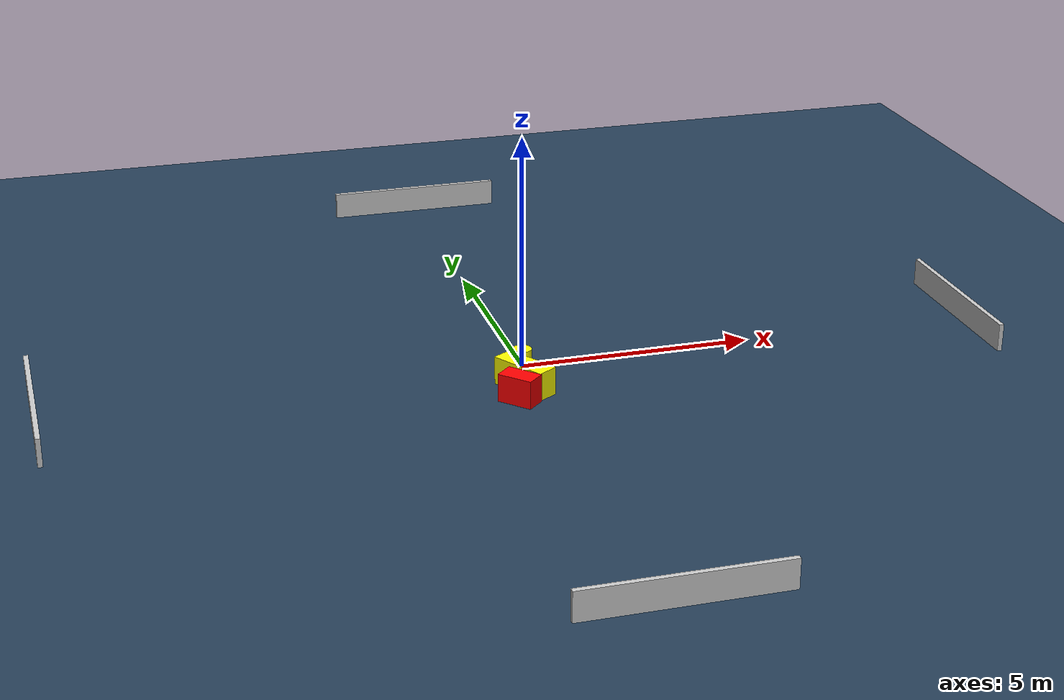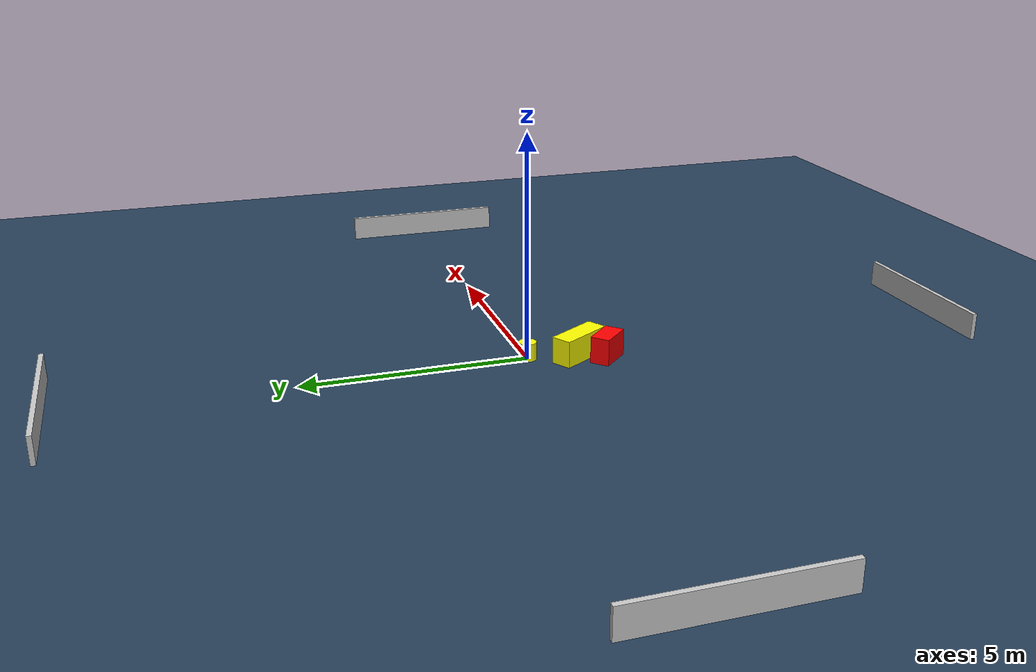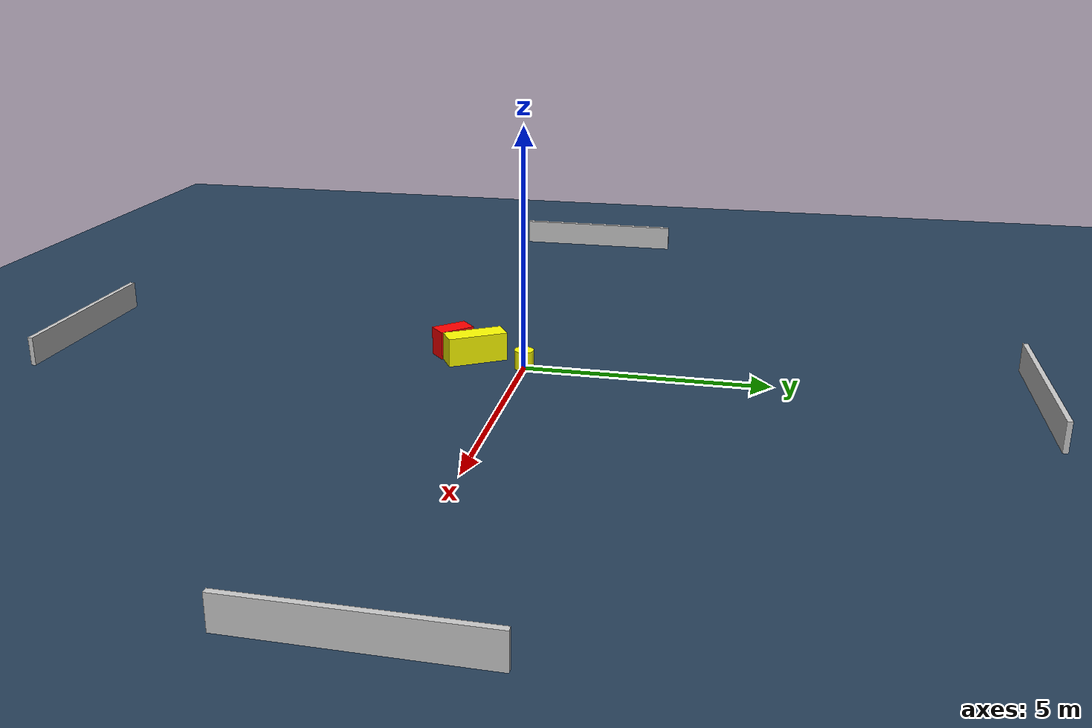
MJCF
<?xml version="1.0" ?>
<mujoco model="generated_environment">
  <option timestep="0.01" integrator="RK4" cone="elliptic"/>
  <default>
    <geom density="1"/>
  </default>
  <asset>
    <texture builtin="gradient" height="3072" name="skybox" rgb1="0.3 0.5 0.7" rgb2="0 0 0" type="skybox" width="512"/>
    <texture builtin="checker" height="300" name="groundplane" rgb1="0.2 0.3 0.4" rgb2="0.1 0.2 0.3" type="2d" width="300"/>
    <material name="groundplane" reflectance="0.2" texrepeat="5 5" texture="groundplane"/>
  </asset>
  <worldbody>
    <light dir="0 0 -1" directional="true" pos="0 0 1.5"/>
    <geom condim="3" friction="0.5 0.005 0.001" material="groundplane" name="floor" pos="0 0 0" size="0 0 0.05" type="plane"/>
    <body name="walls">
      <geom name="wall_1" condim="4" pos="-10.0 0.0 0.3" rgba="0.800000011920929 0.800000011920929 0.800000011920929 1.0" size="0.05 2.0 0.3" type="box"/>
      <geom name="wall_2" condim="4" pos="10.0 0.0 0.3" rgba="0.800000011920929 0.800000011920929 0.800000011920929 1.0" size="0.05 2.0 0.3" type="box"/>
      <geom name="wall_3" condim="4" pos="0.0 -10.0 0.3" rgba="0.800000011920929 0.800000011920929 0.800000011920929 1.0" size="2.0 0.05 0.3" type="box"/>
      <geom name="wall_4" condim="4" pos="0.0 10.0 0.3" rgba="0.800000011920929 0.800000011920929 0.800000011920929 1.0" size="2.0 0.05 0.3" type="box"/>
    </body>
    <body name="robot">
      <joint name="joint_x" type="slide" pos="0 0 0" axis="1 0 0"/>
      <joint name="joint_y" type="slide" pos="0 0 0" axis="0 1 0"/>
      <geom name="robot" type="cylinder" pos="0.0 0.0 0.2" size="0.2 0.2 0.0" mass="5.0" friction="1.0 0.005 0.0001" condim="4" rgba="1.0 1.0 0.0 1.0"/>
    </body>
    <body name="obstacle_1_movable">
      <geom name="obstacle_1_movable" condim="4" pos="-0.2535927603545294 -1.1034793450184726 0.3" euler="0 0 301.5382806044819" friction="0.0 0.005 0.001" rgba="1.0 1.0 0.0 1.0" size="0.6310351139219856 0.23109108889962818 0.3" type="box" mass="0.1"/>
      <joint type="free"/>
    </body>
    <body name="obstacle_2_static">
      <geom name="obstacle_2_static" condim="4" pos="-0.5209303804660481 -1.6578292801615988 0.3" euler="0 0 43.46873896132141" friction="0.0 0.005 0.001" rgba="1.0 0.0 0.0 1.0" size="0.21691005586684256 0.38214723425673036 0.3" type="box"/>
    </body>
  </worldbody>
  <actuator>
    <motor name="actuator_x" joint="joint_x" gear="1" ctrlrange="-1 1"/>
    <motor name="actuator_y" joint="joint_y" gear="1" ctrlrange="-1 1"/>
  </actuator>
</mujoco>
